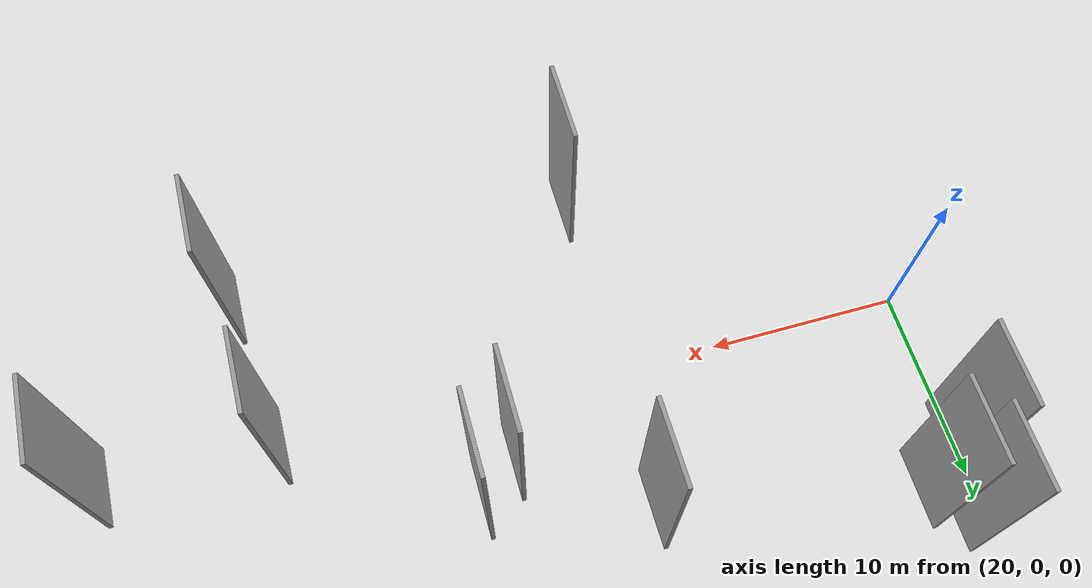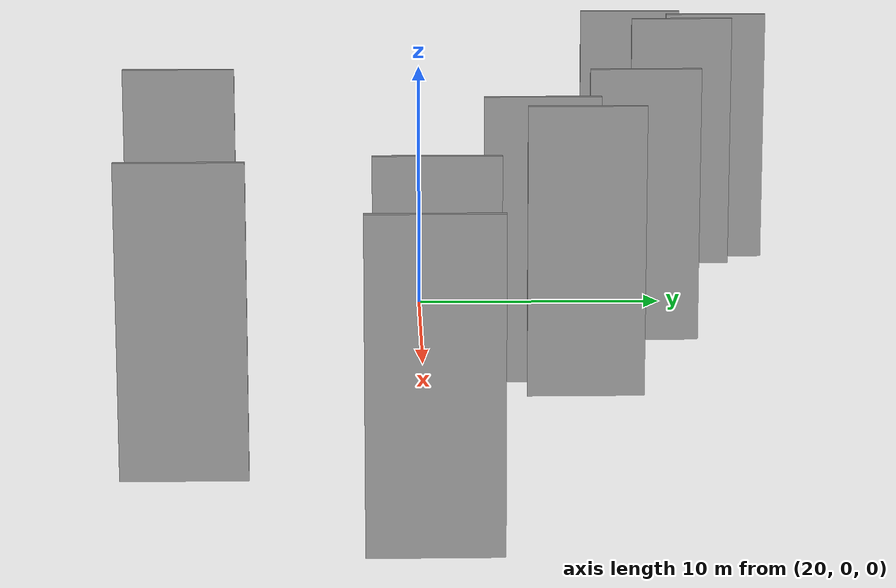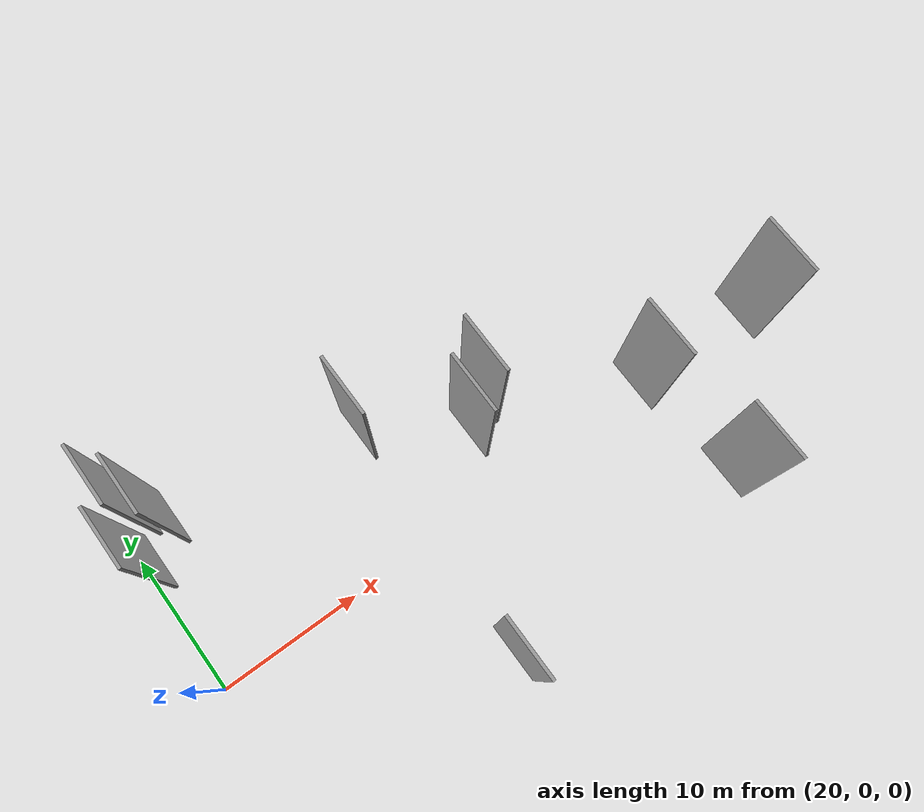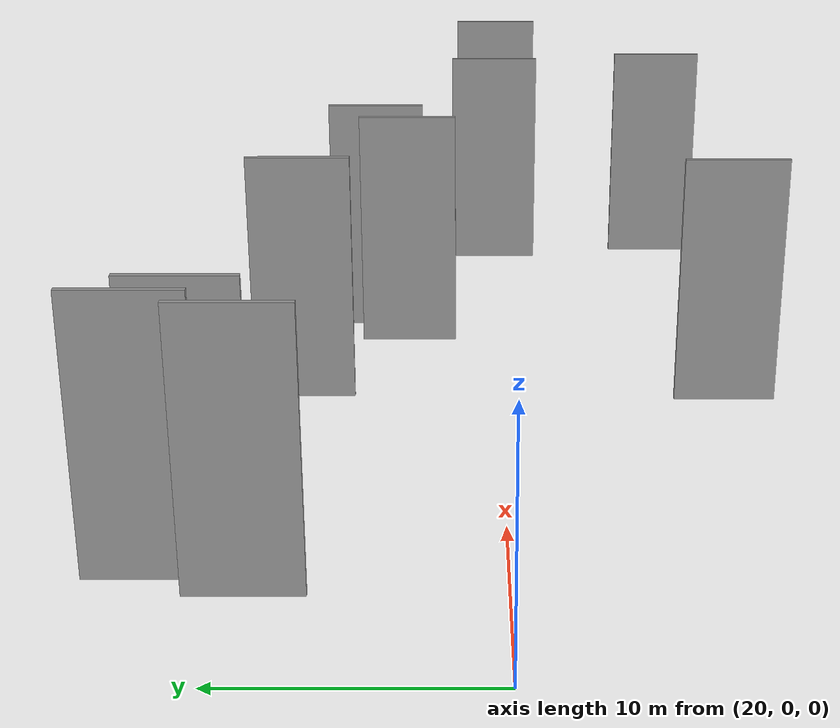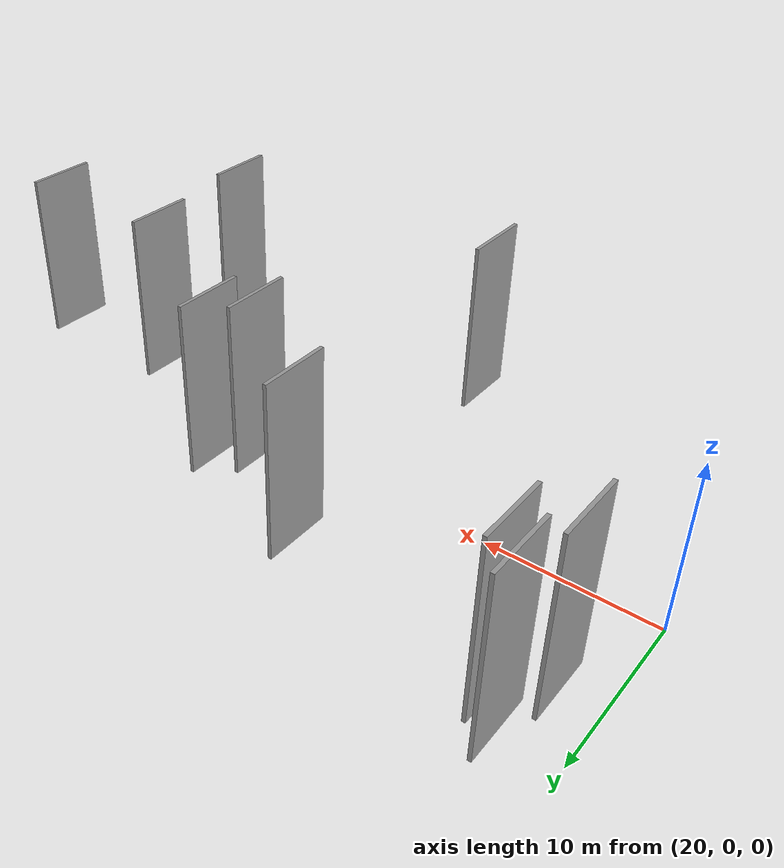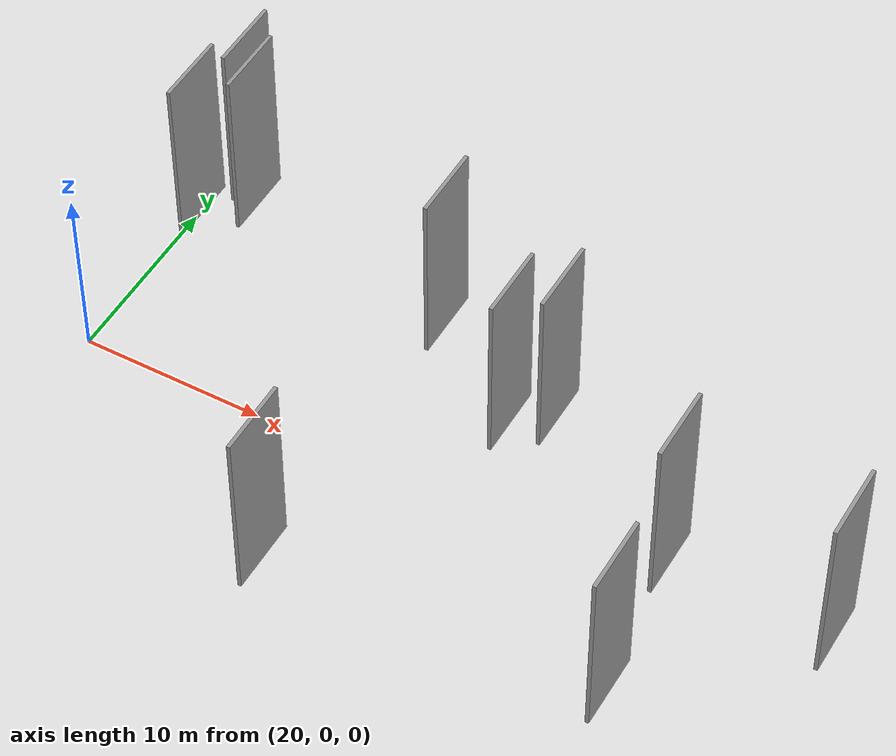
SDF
<sdf version="1.6">
 <world name="default">
  <scene>
   <sky><clouds><speed>12</speed></clouds></sky>
   <ambient>0.4 0.4 0.4 1</ambient>
   <background>0.7 0.7 0.7 1</background>
   <shadows>1</shadows>
  </scene>
  <gravity>0 0 -9.8066</gravity>
  <magnetic_field>6e-06 2.3e-05 -4.2e-05</magnetic_field>
  <physics default="0" name="default_physics" type="ode">
   <ode>
    <solver>
     <type>quick</type>
     <iters>10</iters>
     <sor>1.0</sor>
     <use_dynamic_moi_rescaling>0</use_dynamic_moi_rescaling>
    </solver>
    <constraints>
     <cfm>0</cfm>
     <erp>0.2</erp>
     <contact_max_correcting_vel>100</contact_max_correcting_vel>
     <contact_surface_layer>0.001</contact_surface_layer>
    </constraints>
   </ode>
   <max_step_size>0.004</max_step_size>
   <real_time_factor>1</real_time_factor>
   <real_time_update_rate>250</real_time_update_rate>
  </physics>
  <light name="sun" type="directional">
   <pose>0 0 10 0 0 0</pose>
   <diffuse>0.8 0.8 0.8 1</diffuse>
   <specular>0.2 0.2 0.2 1</specular>
   <attenuation>
    <range>1000</range>
    <constant>0.9</constant>
    <linear>0.01</linear>
    <quadratic>0.001</quadratic>
   </attenuation>
   <direction>-0.5 0.1 -0.9</direction>
  </light>
  <model name="grey_wall_1">
   <static>1</static>
   <pose>53.3691 -7.6808 2.5 0.000000 0.000000 1.570796</pose>
   <link name="link">
    <pose>0 0 5.00 0 0 0</pose>
    <collision name="collision"><geometry><box><size>4.00 0.2 10.00</size></box></geometry></collision>
    <visual name="visual">
     <cast_shadows>0</cast_shadows>
     <geometry><box><size>4.00 0.2 10.00</size></box></geometry>
     <material>
      <script>
       <uri>model://grey_wall/materials/scripts</uri>
       <uri>model://grey_wall/materials/textures</uri>
       <name>vrc/grey_wall</name>
      </script>
     </material>
    </visual>
   </link>
  </model>
  <model name="grey_wall_2">
   <static>1</static>
   <pose>23.6438 10.4792 2.5 0.000000 0.000000 1.570796</pose>
   <link name="link">
    <pose>0 0 5.00 0 0 0</pose>
    <collision name="collision"><geometry><box><size>4.00 0.2 10.00</size></box></geometry></collision>
    <visual name="visual">
     <cast_shadows>0</cast_shadows>
     <geometry><box><size>4.00 0.2 10.00</size></box></geometry>
     <material>
      <script>
       <uri>model://grey_wall/materials/scripts</uri>
       <uri>model://grey_wall/materials/textures</uri>
       <name>vrc/grey_wall</name>
      </script>
     </material>
    </visual>
   </link>
  </model>
  <model name="grey_wall_3">
   <static>1</static>
   <pose>21.4652 8.5708 2.5 0.000000 0.000000 1.570796</pose>
   <link name="link">
    <pose>0 0 5.00 0 0 0</pose>
    <collision name="collision"><geometry><box><size>4.00 0.2 10.00</size></box></geometry></collision>
    <visual name="visual">
     <cast_shadows>0</cast_shadows>
     <geometry><box><size>4.00 0.2 10.00</size></box></geometry>
     <material>
      <script>
       <uri>model://grey_wall/materials/scripts</uri>
       <uri>model://grey_wall/materials/textures</uri>
       <name>vrc/grey_wall</name>
      </script>
     </material>
    </visual>
   </link>
  </model>
  <model name="grey_wall_4">
   <static>1</static>
   <pose>35.8584 -8.8223 2.5 0.000000 0.000000 1.570796</pose>
   <link name="link">
    <pose>0 0 5.00 0 0 0</pose>
    <collision name="collision"><geometry><box><size>4.00 0.2 10.00</size></box></geometry></collision>
    <visual name="visual">
     <cast_shadows>0</cast_shadows>
     <geometry><box><size>4.00 0.2 10.00</size></box></geometry>
     <material>
      <script>
       <uri>model://grey_wall/materials/scripts</uri>
       <uri>model://grey_wall/materials/textures</uri>
       <name>vrc/grey_wall</name>
      </script>
     </material>
    </visual>
   </link>
  </model>
  <model name="grey_wall_5">
   <static>1</static>
   <pose>43.7914 5.3678 2.5 0.000000 0.000000 1.570796</pose>
   <link name="link">
    <pose>0 0 5.00 0 0 0</pose>
    <collision name="collision"><geometry><box><size>4.00 0.2 10.00</size></box></geometry></collision>
    <visual name="visual">
     <cast_shadows>0</cast_shadows>
     <geometry><box><size>4.00 0.2 10.00</size></box></geometry>
     <material>
      <script>
       <uri>model://grey_wall/materials/scripts</uri>
       <uri>model://grey_wall/materials/textures</uri>
       <name>vrc/grey_wall</name>
      </script>
     </material>
    </visual>
   </link>
  </model>
  <model name="grey_wall_6">
   <static>1</static>
   <pose>41.9069 3.9622 2.5 0.000000 0.000000 1.570796</pose>
   <link name="link">
    <pose>0 0 5.00 0 0 0</pose>
    <collision name="collision"><geometry><box><size>4.00 0.2 10.00</size></box></geometry></collision>
    <visual name="visual">
     <cast_shadows>0</cast_shadows>
     <geometry><box><size>4.00 0.2 10.00</size></box></geometry>
     <material>
      <script>
       <uri>model://grey_wall/materials/scripts</uri>
       <uri>model://grey_wall/materials/textures</uri>
       <name>vrc/grey_wall</name>
      </script>
     </material>
    </visual>
   </link>
  </model>
  <model name="grey_wall_7">
   <static>1</static>
   <pose>60.9992 -0.0568 2.5 0.000000 0.000000 1.570796</pose>
   <link name="link">
    <pose>0 0 5.00 0 0 0</pose>
    <collision name="collision"><geometry><box><size>4.00 0.2 10.00</size></box></geometry></collision>
    <visual name="visual">
     <cast_shadows>0</cast_shadows>
     <geometry><box><size>4.00 0.2 10.00</size></box></geometry>
     <material>
      <script>
       <uri>model://grey_wall/materials/scripts</uri>
       <uri>model://grey_wall/materials/textures</uri>
       <name>vrc/grey_wall</name>
      </script>
     </material>
    </visual>
   </link>
  </model>
  <model name="grey_wall_8">
   <static>1</static>
   <pose>22.4436 11.9547 2.5 0.000000 0.000000 1.570796</pose>
   <link name="link">
    <pose>0 0 5.00 0 0 0</pose>
    <collision name="collision"><geometry><box><size>4.00 0.2 10.00</size></box></geometry></collision>
    <visual name="visual">
     <cast_shadows>0</cast_shadows>
     <geometry><box><size>4.00 0.2 10.00</size></box></geometry>
     <material>
      <script>
       <uri>model://grey_wall/materials/scripts</uri>
       <uri>model://grey_wall/materials/textures</uri>
       <name>vrc/grey_wall</name>
      </script>
     </material>
    </visual>
   </link>
  </model>
  <model name="grey_wall_9">
   <static>1</static>
   <pose>36.1439 7.9731 2.5 0.000000 0.000000 1.570796</pose>
   <link name="link">
    <pose>0 0 5.00 0 0 0</pose>
    <collision name="collision"><geometry><box><size>4.00 0.2 10.00</size></box></geometry></collision>
    <visual name="visual">
     <cast_shadows>0</cast_shadows>
     <geometry><box><size>4.00 0.2 10.00</size></box></geometry>
     <material>
      <script>
       <uri>model://grey_wall/materials/scripts</uri>
       <uri>model://grey_wall/materials/textures</uri>
       <name>vrc/grey_wall</name>
      </script>
     </material>
    </visual>
   </link>
  </model>
  <model name="grey_wall_10">
   <static>1</static>
   <pose>52.4627 0.1605 2.5 0.000000 0.000000 1.570796</pose>
   <link name="link">
    <pose>0 0 5.00 0 0 0</pose>
    <collision name="collision"><geometry><box><size>4.00 0.2 10.00</size></box></geometry></collision>
    <visual name="visual">
     <cast_shadows>0</cast_shadows>
     <geometry><box><size>4.00 0.2 10.00</size></box></geometry>
     <material>
      <script>
       <uri>model://grey_wall/materials/scripts</uri>
       <uri>model://grey_wall/materials/textures</uri>
       <name>vrc/grey_wall</name>
      </script>
     </material>
    </visual>
   </link>
  </model>
 </world>
</sdf>
